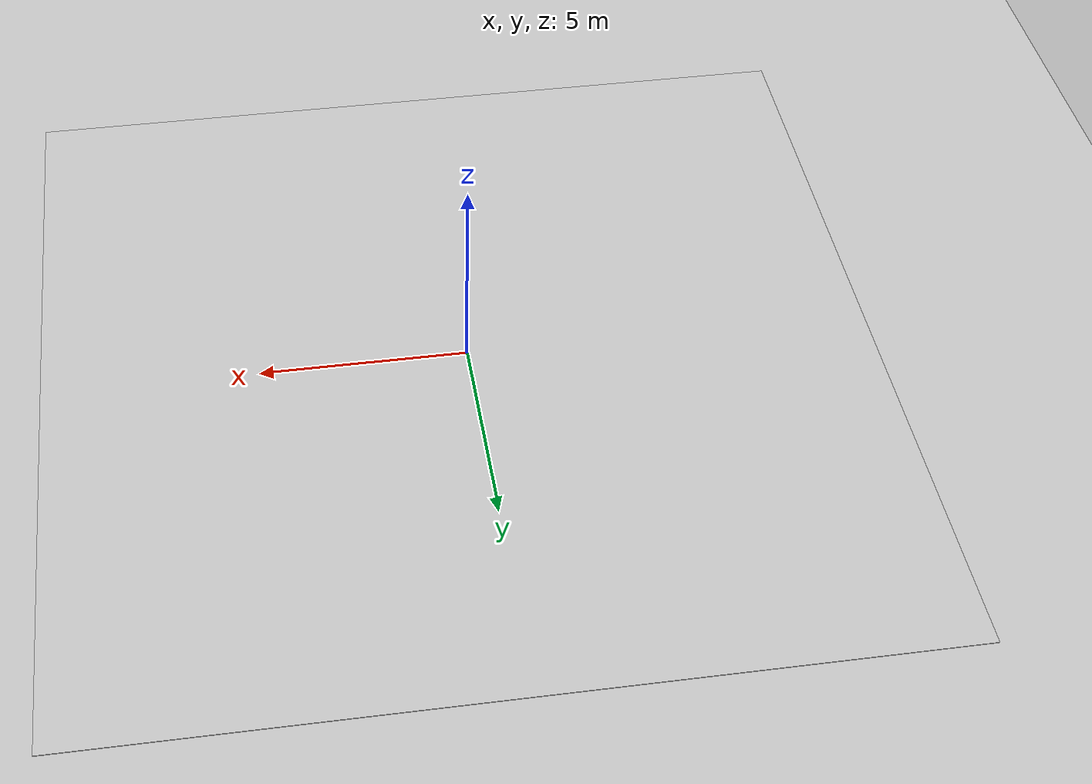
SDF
<sdf version='1.9'>
  <world name='empty'>
    <physics name='1ms' type='ignored'>
      <max_step_size>0.001</max_step_size>
      <real_time_factor>1</real_time_factor>
      <real_time_update_rate>1000</real_time_update_rate>
    </physics>
    <plugin name='gz::sim::systems::Physics' filename='ignition-gazebo-physics-system'/>
    <plugin name='gz::sim::systems::UserCommands' filename='ignition-gazebo-user-commands-system'/>
    <plugin name='gz::sim::systems::SceneBroadcaster' filename='ignition-gazebo-scene-broadcaster-system'/>
    <plugin name='gz::sim::systems::Contact' filename='ignition-gazebo-contact-system'/>
    <plugin name='gz::sim::systems::Sensors' filename='ignition-gazebo-sensors-system'>
      <render_engine>ogre2</render_engine>
    </plugin>
    <gravity>0 0 -9.8</gravity>
    <magnetic_field>6e-06 2.3e-05 -4.2e-05</magnetic_field>
    <atmosphere type='adiabatic'/>
    <scene>
      <ambient>0.4 0.4 0.4 1</ambient>
      <background>0.7 0.7 0.7 1</background>
      <shadows>true</shadows>
    </scene>
    <model name='ground_plane'>
      <static>true</static>
      <link name='link'>
        <collision name='collision'>
          <geometry>
            <plane>
              <normal>0 0 1</normal>
              <size>100 100</size>
            </plane>
          </geometry>
          <surface>
            <friction>
              <ode/>
            </friction>
            <bounce/>
            <contact/>
          </surface>
        </collision>
        <visual name='visual'>
          <geometry>
            <plane>
              <normal>0 0 1</normal>
              <size>100 100</size>
            </plane>
          </geometry>
          <material>
            <ambient>0.8 0.8 0.8 1</ambient>
            <diffuse>0.8 0.8 0.8 1</diffuse>
            <specular>0.8 0.8 0.8 1</specular>
          </material>
        </visual>
        <pose>0 0 0 0 -0 0</pose>
        <inertial>
          <pose>0 0 0 0 -0 0</pose>
          <mass>1</mass>
          <inertia>
            <ixx>1</ixx>
            <ixy>0</ixy>
            <ixz>0</ixz>
            <iyy>1</iyy>
            <iyz>0</iyz>
            <izz>1</izz>
          </inertia>
        </inertial>
        <enable_wind>false</enable_wind>
      </link>
      <pose>0 0 0 0 -0 0</pose>
      <self_collide>false</self_collide>
    </model>
    <model name='black curve curve line'>
      <static>true</static>
      <pose>0.168362 0.000341 0.01 0 -0 0</pose>
      <link name='link'>
        <collision name='collision'>
          <geometry>
            <plane>
              <normal>0 0 1</normal>
              <size>20 20</size>
            </plane>
          </geometry>
          <surface>
            <friction>
              <ode/>
            </friction>
            <bounce/>
            <contact/>
          </surface>
        </collision>
        <visual name='visual'>
          <geometry>
            <plane>
              <normal>0 0 1</normal>
              <size>20 20</size>
            </plane>
          </geometry>
          <material>
            <ambient>0.8 0.8 0.8 1</ambient>
            <diffuse>0.8 0.8 0.8 1</diffuse>
            <pbr>
              <metal>
                <albedo_map>model://black curve curve line/materials/textures/Drawing.png</albedo_map>
              </metal>
            </pbr>
          </material>
        </visual>
        <pose>0 0 0 0 -0 0</pose>
        <inertial>
          <pose>0 0 0 0 -0 0</pose>
          <mass>1</mass>
          <inertia>
            <ixx>1</ixx>
            <ixy>0</ixy>
            <ixz>0</ixz>
            <iyy>1</iyy>
            <iyz>0</iyz>
            <izz>1</izz>
          </inertia>
        </inertial>
        <enable_wind>false</enable_wind>
      </link>
      <self_collide>false</self_collide>
    </model>
    <light name='sun' type='directional'>
      <pose>0 0 10 0 -0 0</pose>
      <cast_shadows>true</cast_shadows>
      <intensity>1</intensity>
      <direction>-0.5 0.1 -0.9</direction>
      <diffuse>0.8 0.8 0.8 1</diffuse>
      <specular>0.2 0.2 0.2 1</specular>
      <attenuation>
        <range>1000</range>
        <linear>0.01</linear>
        <constant>0.90000000000000002</constant>
        <quadratic>0.001</quadratic>
      </attenuation>
      <spot>
        <inner_angle>0</inner_angle>
        <outer_angle>0</outer_angle>
        <falloff>0</falloff>
      </spot>
    </light>
  </world>
</sdf>
